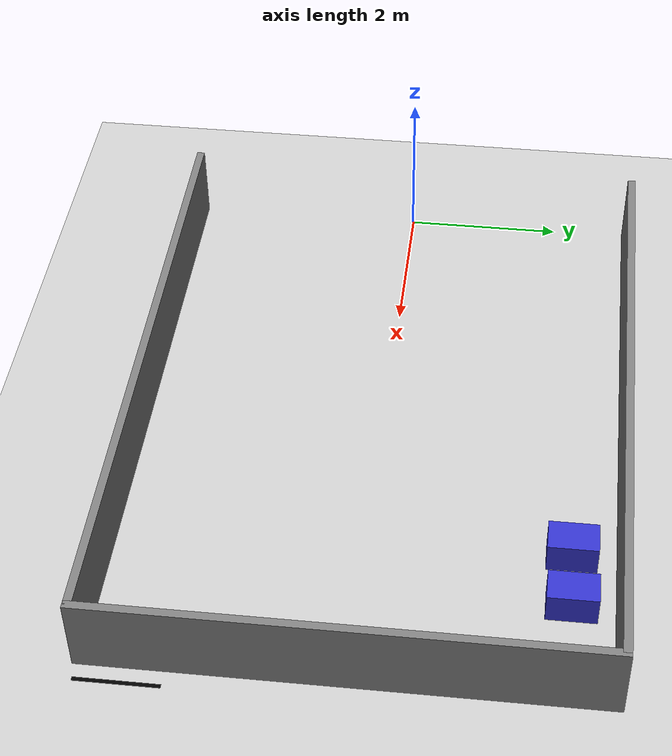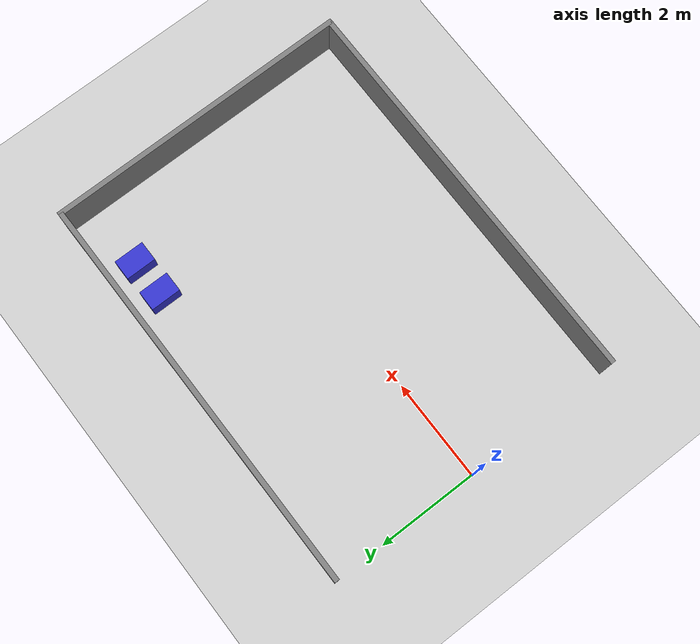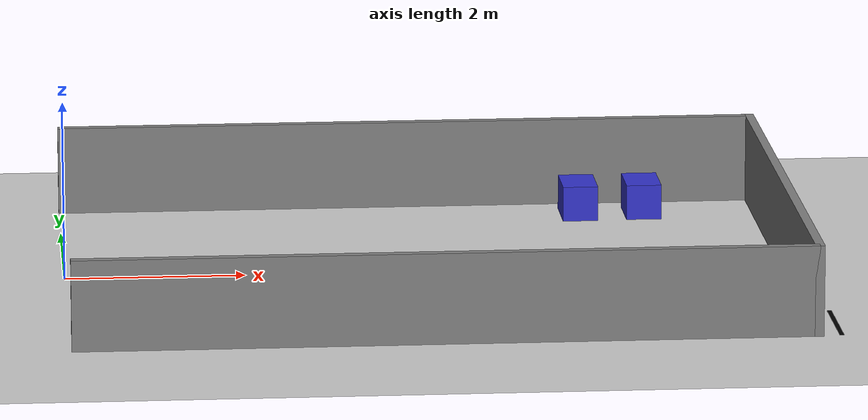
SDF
<sdf version='1.10'>
  <world name='empty'>
    <physics name='1ms' type='dart'>
      <max_step_size>0.001</max_step_size>
      <real_time_factor>1</real_time_factor>
      <real_time_update_rate>1000</real_time_update_rate>
    </physics>
    <plugin name='gz::sim::systems::Physics' filename='ignition-gazebo-physics-system'/>
    <plugin name='gz::sim::systems::UserCommands' filename='ignition-gazebo-user-commands-system'/>
    <plugin name='gz::sim::systems::SceneBroadcaster' filename='ignition-gazebo-scene-broadcaster-system'/>
    <plugin name='gz::sim::systems::Contact' filename='ignition-gazebo-contact-system'/>
    <gravity>0 0 -9.8000000000000007</gravity>
    <magnetic_field>6.0000000000000002e-06 2.3e-05 -4.1999999999999998e-05</magnetic_field>
    <atmosphere type='adiabatic'/>
    <scene>
      <ambient>0.400000006 0.400000006 0.400000006 1</ambient>
      <background>0.699999988 0.699999988 0.699999988 1</background>
      <shadows>true</shadows>
    </scene>
    <model name='ground_plane'>
      <static>true</static>
      <link name='link'>
        <collision name='collision'>
          <geometry>
            <plane>
              <normal>0 0 1</normal>
              <size>100 100</size>
            </plane>
          </geometry>
          <surface>
            <friction>
              <ode/>
            </friction>
            <bounce/>
            <contact/>
          </surface>
        </collision>
        <visual name='visual'>
          <geometry>
            <plane>
              <normal>0 0 1</normal>
              <size>100 100</size>
            </plane>
          </geometry>
          <material>
            <ambient>0.800000012 0.800000012 0.800000012 1</ambient>
            <diffuse>0.800000012 0.800000012 0.800000012 1</diffuse>
            <specular>0.800000012 0.800000012 0.800000012 1</specular>
          </material>
        </visual>
        <pose>0 0 0 0 0 0</pose>
        <inertial>
          <pose>0 0 0 0 0 0</pose>
          <mass>1</mass>
          <inertia>
            <ixx>1</ixx>
            <ixy>0</ixy>
            <ixz>0</ixz>
            <iyy>1</iyy>
            <iyz>0</iyz>
            <izz>1</izz>
          </inertia>
        </inertial>
        <enable_wind>false</enable_wind>
      </link>
      <pose>0 0 0 0 0 0</pose>
      <self_collide>false</self_collide>
    </model>
    <model name='left_col_top_5_6'>
      <pose>8.2481500000000008 -2.5093899999999998 0.00050000000000000001 0 0 -1.5708000000000006</pose>
      <static>true</static>
      <link name='link'>
        <visual name='visual'>
          <geometry>
            <box>
              <size>1 0.050000000000000003 0.001</size>
            </box>
          </geometry>
          <material>
            <ambient>0 0 0 1</ambient>
            <diffuse>0 0 0 1</diffuse>
          </material>
        </visual>
        <pose>0 0 0 0 0 0</pose>
        <inertial>
          <pose>0 0 0 0 0 0</pose>
          <mass>1</mass>
          <inertia>
            <ixx>1</ixx>
            <ixy>0</ixy>
            <ixz>0</ixz>
            <iyy>1</iyy>
            <iyz>0</iyz>
            <izz>1</izz>
          </inertia>
        </inertial>
        <enable_wind>false</enable_wind>
      </link>
      <self_collide>false</self_collide>
    </model>
    <model name='car_left_col_5_1_1'>
      <pose>6.6831399999999999 2.4429500000000002 0.20000000000000001 0 0 -1.5708000000000006</pose>
      <static>true</static>
      <link name='link'>
        <visual name='visual'>
          <geometry>
            <box>
              <size>0.59999999999999998 0.40000000000000002 0.40000000000000002</size>
            </box>
          </geometry>
          <material>
            <ambient>0.200000003 0.200000003 0.800000012 1</ambient>
            <diffuse>0.200000003 0.200000003 0.800000012 1</diffuse>
          </material>
        </visual>
        <collision name='collision'>
          <geometry>
            <box>
              <size>0.59999999999999998 0.40000000000000002 0.40000000000000002</size>
            </box>
          </geometry>
          <surface>
            <friction>
              <ode/>
            </friction>
            <bounce/>
            <contact/>
          </surface>
        </collision>
        <pose>0 0 0 0 0 0</pose>
        <inertial>
          <pose>0 0 0 0 0 0</pose>
          <mass>1</mass>
          <inertia>
            <ixx>1</ixx>
            <ixy>0</ixy>
            <ixz>0</ixz>
            <iyy>1</iyy>
            <iyz>0</iyz>
            <izz>1</izz>
          </inertia>
        </inertial>
        <enable_wind>false</enable_wind>
      </link>
      <self_collide>false</self_collide>
    </model>
    <model name='car_left_col_5_1_2'>
      <pose>5.9500200000000003 2.4231699999999998 0.20000000000000001 0 0 -1.5708000000000006</pose>
      <static>true</static>
      <link name='link'>
        <visual name='visual'>
          <geometry>
            <box>
              <size>0.59999999999999998 0.40000000000000002 0.40000000000000002</size>
            </box>
          </geometry>
          <material>
            <ambient>0.200000003 0.200000003 0.800000012 1</ambient>
            <diffuse>0.200000003 0.200000003 0.800000012 1</diffuse>
          </material>
        </visual>
        <collision name='collision'>
          <geometry>
            <box>
              <size>0.59999999999999998 0.40000000000000002 0.40000000000000002</size>
            </box>
          </geometry>
          <surface>
            <friction>
              <ode/>
            </friction>
            <bounce/>
            <contact/>
          </surface>
        </collision>
        <pose>0 0 0 0 0 0</pose>
        <inertial>
          <pose>0 0 0 0 0 0</pose>
          <mass>1</mass>
          <inertia>
            <ixx>1</ixx>
            <ixy>0</ixy>
            <ixz>0</ixz>
            <iyy>1</iyy>
            <iyz>0</iyz>
            <izz>1</izz>
          </inertia>
        </inertial>
        <enable_wind>false</enable_wind>
      </link>
      <self_collide>false</self_collide>
    </model>
    <model name='goal_parking_frame'>
      <static>true</static>
      <pose>3.75 0.5 0 0 0 1.5708000000000006</pose>
      <link name='link'>
        <pose>0 0 0 0 0 0</pose>
        <inertial>
          <pose>0 0 0 0 0 0</pose>
          <mass>1</mass>
          <inertia>
            <ixx>1</ixx>
            <ixy>0</ixy>
            <ixz>0</ixz>
            <iyy>1</iyy>
            <iyz>0</iyz>
            <izz>1</izz>
          </inertia>
        </inertial>
        <enable_wind>false</enable_wind>
      </link>
      <self_collide>false</self_collide>
    </model>
    <model name='boundary_walls'>
      <static>true</static>
      <link name='link'>
        <collision name='left_wall_col'>
          <pose>4 3 0.5 0 0 0</pose>
          <geometry>
            <box>
              <size>8 0.10000000000000001 1</size>
            </box>
          </geometry>
          <surface>
            <friction>
              <ode/>
            </friction>
            <bounce/>
            <contact/>
          </surface>
        </collision>
        <visual name='left_wall_vis'>
          <pose>4 3 0.5 0 0 0</pose>
          <geometry>
            <box>
              <size>8 0.10000000000000001 1</size>
            </box>
          </geometry>
          <material>
            <ambient>0.5 0.5 0.5 1</ambient>
            <diffuse>0.5 0.5 0.5 1</diffuse>
          </material>
        </visual>
        <collision name='right_wall_col'>
          <pose>4 -3 0.5 0 0 0</pose>
          <geometry>
            <box>
              <size>8 0.10000000000000001 1</size>
            </box>
          </geometry>
          <surface>
            <friction>
              <ode/>
            </friction>
            <bounce/>
            <contact/>
          </surface>
        </collision>
        <visual name='right_wall_vis'>
          <pose>4 -3 0.5 0 0 0</pose>
          <geometry>
            <box>
              <size>8 0.10000000000000001 1</size>
            </box>
          </geometry>
          <material>
            <ambient>0.5 0.5 0.5 1</ambient>
            <diffuse>0.5 0.5 0.5 1</diffuse>
          </material>
        </visual>
        <collision name='top_wall_col'>
          <pose>8 0 0.5 0 0 0</pose>
          <geometry>
            <box>
              <size>0.10000000000000001 6.0999999999999996 1</size>
            </box>
          </geometry>
          <surface>
            <friction>
              <ode/>
            </friction>
            <bounce/>
            <contact/>
          </surface>
        </collision>
        <visual name='top_wall_vis'>
          <pose>8 0 0.5 0 0 0</pose>
          <geometry>
            <box>
              <size>0.10000000000000001 6.0999999999999996 1</size>
            </box>
          </geometry>
          <material>
            <ambient>0.5 0.5 0.5 1</ambient>
            <diffuse>0.5 0.5 0.5 1</diffuse>
          </material>
        </visual>
        <pose>0 0 0 0 0 0</pose>
        <inertial>
          <pose>0 0 0 0 0 0</pose>
          <mass>1</mass>
          <inertia>
            <ixx>1</ixx>
            <ixy>0</ixy>
            <ixz>0</ixz>
            <iyy>1</iyy>
            <iyz>0</iyz>
            <izz>1</izz>
          </inertia>
        </inertial>
        <enable_wind>false</enable_wind>
      </link>
      <pose>0 0 0 0 0 0</pose>
      <self_collide>false</self_collide>
    </model>

    <light name='sun' type='directional'>
      <pose>0 0 10 0 0 0</pose>
      <cast_shadows>true</cast_shadows>
      <intensity>1</intensity>
      <direction>-0.5 0.10000000000000001 -0.90000000000000002</direction>
      <diffuse>0.800000012 0.800000012 0.800000012 1</diffuse>
      <specular>0.200000003 0.200000003 0.200000003 1</specular>
      <attenuation>
        <range>10</range>
        <linear>1</linear>
        <constant>1</constant>
        <quadratic>0</quadratic>
      </attenuation>
      <spot>
        <inner_angle>0</inner_angle>
        <outer_angle>0</outer_angle>
        <falloff>0</falloff>
      </spot>
    </light>
  </world>
</sdf>
